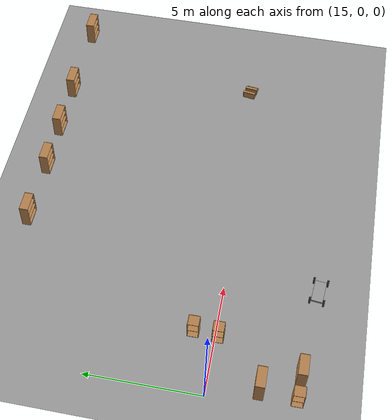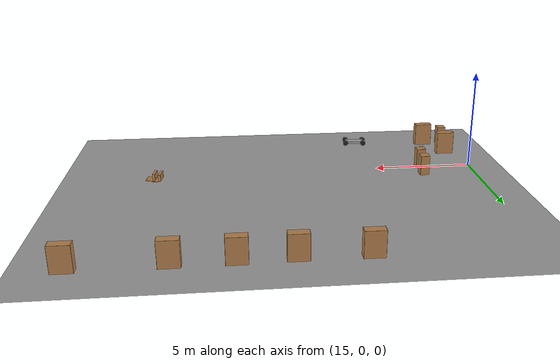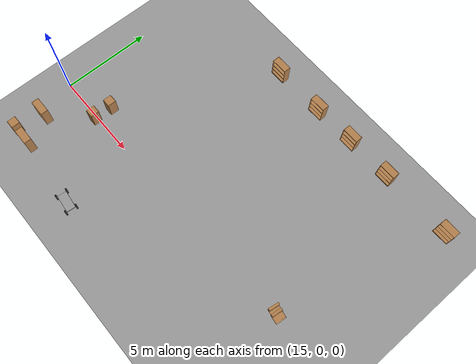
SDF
<sdf version="1.4">
 <world name="default">
  <light name="sun" type="directional">
   <pose>0 0 10 0 -0 0</pose>
   <diffuse>0.8 0.8 0.8 1</diffuse>
   <specular>0.2 0.2 0.2 1</specular>
   <attenuation>
    <range>1000</range>
    <constant>0.9</constant>
    <linear>0.01</linear>
    <quadratic>0.001</quadratic>
   </attenuation>
   <direction>0.5 0.1 -0.9</direction>
  </light>
  <scene><ambient>0.4 0.4 0.4 1</ambient><background>0.7 0.7 0.7 1</background><shadows>1</shadows></scene>
  <physics type="ode">
   <max_step_size>0.01</max_step_size>
   <real_time_factor>1</real_time_factor>
   <real_time_update_rate>100</real_time_update_rate>
   <gravity>0 0 -9.8</gravity>
  </physics>
  <model name="bookshelf">
   <static>1</static>
   <link name="link">
    <inertial><mass>1</mass></inertial>
    <collision name="back">
     <pose>0 0.005 0.6 0 -0 0</pose>
     <geometry><box><size>0.9 0.01 1.2</size></box></geometry>
    </collision>
    <visual name="visual1">
     <pose>0 0.005 0.6 0 -0 0</pose>
     <geometry><box><size>0.9 0.01 1.2</size></box></geometry>
     <material>
      <script><uri>file://media/materials/scripts/gazebo.material</uri><name>Gazebo/Wood</name></script>
     </material>
    </visual>
    <collision name="left_side">
     <pose>0.45 -0.195 0.6 0 -0 0</pose>
     <geometry><box><size>0.02 0.4 1.2</size></box></geometry>
    </collision>
    <visual name="visual2">
     <pose>0.45 -0.195 0.6 0 -0 0</pose>
     <geometry><box><size>0.02 0.4 1.2</size></box></geometry>
     <material>
      <script><uri>file://media/materials/scripts/gazebo.material</uri><name>Gazebo/Wood</name></script>
     </material>
    </visual>
    <collision name="right_side">
     <pose>-0.45 -0.195 0.6 0 -0 0</pose>
     <geometry><box><size>0.02 0.4 1.2</size></box></geometry>
    </collision>
    <visual name="visual3">
     <pose>-0.45 -0.195 0.6 0 -0 0</pose>
     <geometry><box><size>0.02 0.4 1.2</size></box></geometry>
     <material>
      <script><uri>file://media/materials/scripts/gazebo.material</uri><name>Gazebo/Wood</name></script>
     </material>
    </visual>
    <collision name="bottom">
     <pose>0 -0.195 0.03 0 -0 0</pose>
     <geometry><box><size>0.88 0.4 0.06</size></box></geometry>
    </collision>
    <visual name="visual4">
     <pose>0 -0.195 0.03 0 -0 0</pose>
     <geometry><box><size>0.88 0.4 0.06</size></box></geometry>
     <material>
      <script><uri>file://media/materials/scripts/gazebo.material</uri><name>Gazebo/Wood</name></script>
     </material>
    </visual>
    <collision name="top">
     <pose>0 -0.195 1.19 0 -0 0</pose>
     <geometry><box><size>0.88 0.4 0.02</size></box></geometry>
    </collision>
    <visual name="visual5">
     <pose>0 -0.195 1.19 0 -0 0</pose>
     <geometry><box><size>0.88 0.4 0.02</size></box></geometry>
     <material>
      <script><uri>file://media/materials/scripts/gazebo.material</uri><name>Gazebo/Wood</name></script>
     </material>
    </visual>
    <collision name="low_shelf">
     <pose>0 -0.195 0.43 0 -0 0</pose>
     <geometry><box><size>0.88 0.4 0.02</size></box></geometry>
    </collision>
    <visual name="visual6">
     <pose>0 -0.195 0.43 0 -0 0</pose>
     <geometry><box><size>0.88 0.4 0.02</size></box></geometry>
     <material>
      <script><uri>file://media/materials/scripts/gazebo.material</uri><name>Gazebo/Wood</name></script>
     </material>
    </visual>
    <collision name="high_shelf">
     <pose>0 -0.195 0.8 0 -0 0</pose>
     <geometry><box><size>0.88 0.4 0.02</size></box></geometry>
    </collision>
    <visual name="visual7">
     <pose>0 -0.195 0.8 0 -0 0</pose>
     <geometry><box><size>0.88 0.4 0.02</size></box></geometry>
     <material>
      <script><uri>file://media/materials/scripts/gazebo.material</uri><name>Gazebo/Wood</name></script>
     </material>
    </visual>
    <velocity_decay><linear>0</linear><angular>0</angular></velocity_decay>
   </link>
   <pose>15.7272 -1.91134 0 0 -0 0</pose>
  </model>
  <model name="ground_plane_0">
   <static>1</static>
   <link name="link">
    <collision name="collision">
     <geometry><plane><normal>0 0 1</normal><size>100 100</size></plane></geometry>
     <surface><friction><ode><mu>100</mu><mu2>50</mu2></ode></friction></surface>
    </collision>
    <visual name="visual">
     <cast_shadows>0</cast_shadows>
     <geometry><plane><normal>0 0 1</normal><size>100 100</size></plane></geometry>
     <material>
      <script><uri>file://media/materials/scripts/gazebo.material</uri><name>Gazebo/Grey</name></script>
     </material>
    </visual>
    <velocity_decay><linear>0</linear><angular>0</angular></velocity_decay>
   </link>
   <pose>0.497681 0 0 0 -0 0</pose>
  </model>
  <spherical_coordinates>
   <surface_model>EARTH_WGS84</surface_model>
   <latitude_deg>0</latitude_deg>
   <longitude_deg>0</longitude_deg>
   <elevation>0</elevation>
   <heading_deg>0</heading_deg>
  </spherical_coordinates>
  <model name="cabinet">
   <static>1</static>
   <link name="cabinet_bottom_plate">
    <inertial>
     <pose>0 0 -1 0 -0 0</pose>
     <inertia><ixx>2.05</ixx><ixy>0</ixy><ixz>0</ixz><iyy>2.05</iyy><iyz>0</iyz><izz>2.05</izz></inertia>
     <mass>25</mass>
    </inertial>
    <collision name="cabinet_bottom_plate_geom">
     <pose>0 0 0.01 0 -0 0</pose>
     <geometry><box><size>0.45 0.45 0.02</size></box></geometry>
    </collision>
    <visual name="cabinet_bottom_plate_geom_visual">
     <pose>0 0 0.01 0 -0 0</pose>
     <geometry><box><size>0.45 0.45 0.02</size></box></geometry>
     <material>
      <script><uri>file://media/materials/scripts/gazebo.material</uri><name>Gazebo/Wood</name></script>
     </material>
    </visual>
    <collision name="cabinet_bottom_plate_geom_cabinet_back_plate">
     <pose>0.235 0 0.51 0 -0 0</pose>
     <geometry><box><size>0.02 0.45 1.02</size></box></geometry>
    </collision>
    <visual name="cabinet_bottom_plate_geom_cabinet_back_plate_visual">
     <pose>0.235 0 0.51 0 -0 0</pose>
     <geometry><box><size>0.02 0.45 1.02</size></box></geometry>
     <material>
      <script><uri>file://media/materials/scripts/gazebo.material</uri><name>Gazebo/Wood</name></script>
     </material>
    </visual>
    <collision name="cabinet_bottom_plate_geom_cabinet_left_plate">
     <pose>0 0.235 0.51 0 -0 0</pose>
     <geometry><box><size>0.45 0.02 1.02</size></box></geometry>
    </collision>
    <visual name="cabinet_bottom_plate_geom_cabinet_left_plate_visual">
     <pose>0 0.235 0.51 0 -0 0</pose>
     <geometry><box><size>0.45 0.02 1.02</size></box></geometry>
     <material>
      <script><uri>file://media/materials/scripts/gazebo.material</uri><name>Gazebo/Wood</name></script>
     </material>
    </visual>
    <collision name="cabinet_bottom_plate_geom_cabinet_middle_plate">
     <pose>0 0 0.51 0 -0 0</pose>
     <geometry><box><size>0.45 0.45 0.02</size></box></geometry>
    </collision>
    <visual name="cabinet_bottom_plate_geom_cabinet_middle_plate_visual">
     <pose>0 0 0.51 0 -0 0</pose>
     <geometry><box><size>0.45 0.45 0.02</size></box></geometry>
     <material>
      <script><uri>file://media/materials/scripts/gazebo.material</uri><name>Gazebo/Wood</name></script>
     </material>
    </visual>
    <collision name="cabinet_bottom_plate_geom_cabinet_right_plate">
     <pose>0 -0.235 0.51 0 -0 0</pose>
     <geometry><box><size>0.45 0.02 1.02</size></box></geometry>
    </collision>
    <visual name="cabinet_bottom_plate_geom_cabinet_right_plate_visual">
     <pose>0 -0.235 0.51 0 -0 0</pose>
     <geometry><box><size>0.45 0.02 1.02</size></box></geometry>
     <material>
      <script><uri>file://media/materials/scripts/gazebo.material</uri><name>Gazebo/Wood</name></script>
     </material>
    </visual>
    <collision name="cabinet_bottom_plate_geom_cabinet_top_plate">
     <pose>0 0 1.01 0 -0 0</pose>
     <geometry><box><size>0.45 0.45 0.02</size></box></geometry>
    </collision>
    <visual name="cabinet_bottom_plate_geom_cabinet_top_plate_visual">
     <pose>0 0 1.01 0 -0 0</pose>
     <geometry><box><size>0.45 0.45 0.02</size></box></geometry>
     <material>
      <script><uri>file://media/materials/scripts/gazebo.material</uri><name>Gazebo/Wood</name></script>
     </material>
    </visual>
    <velocity_decay><linear>0</linear><angular>0</angular></velocity_decay>
   </link>
   <pose>15.496 -3.64928 0 0 -0 0</pose>
  </model>
  <model name="bookshelf_0">
   <static>1</static>
   <link name="link">
    <inertial><mass>1</mass></inertial>
    <collision name="back">
     <pose>0 0.005 0.6 0 -0 0</pose>
     <geometry><box><size>0.9 0.01 1.2</size></box></geometry>
    </collision>
    <visual name="visual1">
     <pose>0 0.005 0.6 0 -0 0</pose>
     <geometry><box><size>0.9 0.01 1.2</size></box></geometry>
     <material>
      <script><uri>file://media/materials/scripts/gazebo.material</uri><name>Gazebo/Wood</name></script>
     </material>
    </visual>
    <collision name="left_side">
     <pose>0.45 -0.195 0.6 0 -0 0</pose>
     <geometry><box><size>0.02 0.4 1.2</size></box></geometry>
    </collision>
    <visual name="visual2">
     <pose>0.45 -0.195 0.6 0 -0 0</pose>
     <geometry><box><size>0.02 0.4 1.2</size></box></geometry>
     <material>
      <script><uri>file://media/materials/scripts/gazebo.material</uri><name>Gazebo/Wood</name></script>
     </material>
    </visual>
    <collision name="right_side">
     <pose>-0.45 -0.195 0.6 0 -0 0</pose>
     <geometry><box><size>0.02 0.4 1.2</size></box></geometry>
    </collision>
    <visual name="visual3">
     <pose>-0.45 -0.195 0.6 0 -0 0</pose>
     <geometry><box><size>0.02 0.4 1.2</size></box></geometry>
     <material>
      <script><uri>file://media/materials/scripts/gazebo.material</uri><name>Gazebo/Wood</name></script>
     </material>
    </visual>
    <collision name="bottom">
     <pose>0 -0.195 0.03 0 -0 0</pose>
     <geometry><box><size>0.88 0.4 0.06</size></box></geometry>
    </collision>
    <visual name="visual4">
     <pose>0 -0.195 0.03 0 -0 0</pose>
     <geometry><box><size>0.88 0.4 0.06</size></box></geometry>
     <material>
      <script><uri>file://media/materials/scripts/gazebo.material</uri><name>Gazebo/Wood</name></script>
     </material>
    </visual>
    <collision name="top">
     <pose>0 -0.195 1.19 0 -0 0</pose>
     <geometry><box><size>0.88 0.4 0.02</size></box></geometry>
    </collision>
    <visual name="visual5">
     <pose>0 -0.195 1.19 0 -0 0</pose>
     <geometry><box><size>0.88 0.4 0.02</size></box></geometry>
     <material>
      <script><uri>file://media/materials/scripts/gazebo.material</uri><name>Gazebo/Wood</name></script>
     </material>
    </visual>
    <collision name="low_shelf">
     <pose>0 -0.195 0.43 0 -0 0</pose>
     <geometry><box><size>0.88 0.4 0.02</size></box></geometry>
    </collision>
    <visual name="visual6">
     <pose>0 -0.195 0.43 0 -0 0</pose>
     <geometry><box><size>0.88 0.4 0.02</size></box></geometry>
     <material>
      <script><uri>file://media/materials/scripts/gazebo.material</uri><name>Gazebo/Wood</name></script>
     </material>
    </visual>
    <collision name="high_shelf">
     <pose>0 -0.195 0.8 0 -0 0</pose>
     <geometry><box><size>0.88 0.4 0.02</size></box></geometry>
    </collision>
    <visual name="visual7">
     <pose>0 -0.195 0.8 0 -0 0</pose>
     <geometry><box><size>0.88 0.4 0.02</size></box></geometry>
     <material>
      <script><uri>file://media/materials/scripts/gazebo.material</uri><name>Gazebo/Wood</name></script>
     </material>
    </visual>
    <velocity_decay><linear>0</linear><angular>0</angular></velocity_decay>
   </link>
   <pose>16.5579 -3.48331 0 0 -0 0</pose>
  </model>
  <model name="cart_rigid_suspension">
   <link name="chassis">
    <pose>0 0 0.15 0 -0 0</pose>
    <inertial>
     <pose>0.1 0 0 0 -0 0</pose>
     <mass>10</mass>
     <inertia>
      <ixx>0.216667</ixx>
      <iyy>0.841667</iyy>
      <izz>1.04167</izz>
      <ixy>0</ixy>
      <ixz>0</ixz>
      <iyz>0</iyz>
     </inertia>
    </inertial>
    <collision name="collision"><geometry><box><size>1 0.5 0.1</size></box></geometry></collision>
    <visual name="visual">
     <geometry><box><size>1 0.5 0.1</size></box></geometry>
     <material>
      <script><uri>file://media/materials/scripts/gazebo.material</uri><name>Gazebo/Grey</name></script>
     </material>
    </visual>
    <velocity_decay><linear>0</linear><angular>0</angular></velocity_decay>
   </link>
   <link name="wheel_front_left">
    <pose>0.5 0.298 0.15 -1.5708 0 0</pose>
    <inertial>
     <mass>0.5</mass>
     <inertia>
      <ixx>0.00307917</ixx>
      <iyy>0.00307917</iyy>
      <izz>0.005625</izz>
      <ixy>0</ixy>
      <ixz>0</ixz>
      <iyz>0</iyz>
     </inertia>
    </inertial>
    <collision name="collision">
     <geometry><cylinder><radius>0.15</radius><length>0.08</length></cylinder></geometry>
    </collision>
    <visual name="visual">
     <geometry><cylinder><radius>0.15</radius><length>0.08</length></cylinder></geometry>
     <material>
      <script><uri>file://media/materials/scripts/gazebo.material</uri><name>Gazebo/Black</name></script>
     </material>
    </visual>
    <velocity_decay><linear>0</linear><angular>0</angular></velocity_decay>
   </link>
   <joint name="wheel_front_left_spin" type="revolute">
    <parent>chassis</parent>
    <child>wheel_front_left</child>
    <axis><xyz>0 0 1</xyz><limit><lower>-1e+16</lower><upper>1e+16</upper></limit></axis>
   </joint>
   <link name="wheel_front_right">
    <pose>0.5 -0.298 0.15 -1.5708 0 0</pose>
    <inertial>
     <mass>0.5</mass>
     <inertia>
      <ixx>0.00307917</ixx>
      <iyy>0.00307917</iyy>
      <izz>0.005625</izz>
      <ixy>0</ixy>
      <ixz>0</ixz>
      <iyz>0</iyz>
     </inertia>
    </inertial>
    <collision name="collision">
     <geometry><cylinder><radius>0.15</radius><length>0.08</length></cylinder></geometry>
    </collision>
    <visual name="visual">
     <geometry><cylinder><radius>0.15</radius><length>0.08</length></cylinder></geometry>
     <material>
      <script><uri>file://media/materials/scripts/gazebo.material</uri><name>Gazebo/Black</name></script>
     </material>
    </visual>
    <velocity_decay><linear>0</linear><angular>0</angular></velocity_decay>
   </link>
   <joint name="wheel_front_right_spin" type="revolute">
    <parent>chassis</parent>
    <child>wheel_front_right</child>
    <axis><xyz>0 0 1</xyz><limit><lower>-1e+16</lower><upper>1e+16</upper></limit></axis>
   </joint>
   <link name="wheel_rear_left">
    <pose>-0.5 0.298 0.15 -1.5708 0 0</pose>
    <inertial>
     <mass>0.5</mass>
     <inertia>
      <ixx>0.00307917</ixx>
      <iyy>0.00307917</iyy>
      <izz>0.005625</izz>
      <ixy>0</ixy>
      <ixz>0</ixz>
      <iyz>0</iyz>
     </inertia>
    </inertial>
    <collision name="collision">
     <geometry><cylinder><radius>0.15</radius><length>0.08</length></cylinder></geometry>
    </collision>
    <visual name="visual">
     <geometry><cylinder><radius>0.15</radius><length>0.08</length></cylinder></geometry>
     <material>
      <script><uri>file://media/materials/scripts/gazebo.material</uri><name>Gazebo/Black</name></script>
     </material>
    </visual>
    <velocity_decay><linear>0</linear><angular>0</angular></velocity_decay>
   </link>
   <joint name="wheel_rear_left_spin" type="revolute">
    <parent>chassis</parent>
    <child>wheel_rear_left</child>
    <axis><xyz>0 0 1</xyz><limit><lower>-1e+16</lower><upper>1e+16</upper></limit></axis>
   </joint>
   <link name="wheel_rear_right">
    <pose>-0.5 -0.298 0.15 -1.5708 0 0</pose>
    <inertial>
     <mass>0.5</mass>
     <inertia>
      <ixx>0.00307917</ixx>
      <iyy>0.00307917</iyy>
      <izz>0.005625</izz>
      <ixy>0</ixy>
      <ixz>0</ixz>
      <iyz>0</iyz>
     </inertia>
    </inertial>
    <collision name="collision">
     <geometry><cylinder><radius>0.15</radius><length>0.08</length></cylinder></geometry>
    </collision>
    <visual name="visual">
     <geometry><cylinder><radius>0.15</radius><length>0.08</length></cylinder></geometry>
     <material>
      <script><uri>file://media/materials/scripts/gazebo.material</uri><name>Gazebo/Black</name></script>
     </material>
    </visual>
    <velocity_decay><linear>0</linear><angular>0</angular></velocity_decay>
   </link>
   <joint name="wheel_rear_right_spin" type="revolute">
    <parent>chassis</parent>
    <child>wheel_rear_right</child>
    <axis><xyz>0 0 1</xyz><limit><lower>-1e+16</lower><upper>1e+16</upper></limit></axis>
   </joint>
   <pose>20.5338 -4.00375 4.2e-05 -3.4e-05 -7e-05 -0.097938</pose>
   <static>0</static>
  </model>
  <model name="cabinet_0">
   <static>1</static>
   <link name="cabinet_bottom_plate">
    <inertial>
     <pose>0 0 -1 0 -0 0</pose>
     <inertia><ixx>2.05</ixx><ixy>0</ixy><ixz>0</ixz><iyy>2.05</iyy><iyz>0</iyz><izz>2.05</izz></inertia>
     <mass>25</mass>
    </inertial>
    <collision name="cabinet_bottom_plate_geom">
     <pose>0 0 0.01 0 -0 0</pose>
     <geometry><box><size>0.45 0.45 0.02</size></box></geometry>
    </collision>
    <visual name="cabinet_bottom_plate_geom_visual">
     <pose>0 0 0.01 0 -0 0</pose>
     <geometry><box><size>0.45 0.45 0.02</size></box></geometry>
     <material>
      <script><uri>file://media/materials/scripts/gazebo.material</uri><name>Gazebo/Wood</name></script>
     </material>
    </visual>
    <collision name="cabinet_bottom_plate_geom_cabinet_back_plate">
     <pose>0.235 0 0.51 0 -0 0</pose>
     <geometry><box><size>0.02 0.45 1.02</size></box></geometry>
    </collision>
    <visual name="cabinet_bottom_plate_geom_cabinet_back_plate_visual">
     <pose>0.235 0 0.51 0 -0 0</pose>
     <geometry><box><size>0.02 0.45 1.02</size></box></geometry>
     <material>
      <script><uri>file://media/materials/scripts/gazebo.material</uri><name>Gazebo/Wood</name></script>
     </material>
    </visual>
    <collision name="cabinet_bottom_plate_geom_cabinet_left_plate">
     <pose>0 0.235 0.51 0 -0 0</pose>
     <geometry><box><size>0.45 0.02 1.02</size></box></geometry>
    </collision>
    <visual name="cabinet_bottom_plate_geom_cabinet_left_plate_visual">
     <pose>0 0.235 0.51 0 -0 0</pose>
     <geometry><box><size>0.45 0.02 1.02</size></box></geometry>
     <material>
      <script><uri>file://media/materials/scripts/gazebo.material</uri><name>Gazebo/Wood</name></script>
     </material>
    </visual>
    <collision name="cabinet_bottom_plate_geom_cabinet_middle_plate">
     <pose>0 0 0.51 0 -0 0</pose>
     <geometry><box><size>0.45 0.45 0.02</size></box></geometry>
    </collision>
    <visual name="cabinet_bottom_plate_geom_cabinet_middle_plate_visual">
     <pose>0 0 0.51 0 -0 0</pose>
     <geometry><box><size>0.45 0.45 0.02</size></box></geometry>
     <material>
      <script><uri>file://media/materials/scripts/gazebo.material</uri><name>Gazebo/Wood</name></script>
     </material>
    </visual>
    <collision name="cabinet_bottom_plate_geom_cabinet_right_plate">
     <pose>0 -0.235 0.51 0 -0 0</pose>
     <geometry><box><size>0.45 0.02 1.02</size></box></geometry>
    </collision>
    <visual name="cabinet_bottom_plate_geom_cabinet_right_plate_visual">
     <pose>0 -0.235 0.51 0 -0 0</pose>
     <geometry><box><size>0.45 0.02 1.02</size></box></geometry>
     <material>
      <script><uri>file://media/materials/scripts/gazebo.material</uri><name>Gazebo/Wood</name></script>
     </material>
    </visual>
    <collision name="cabinet_bottom_plate_geom_cabinet_top_plate">
     <pose>0 0 1.01 0 -0 0</pose>
     <geometry><box><size>0.45 0.45 0.02</size></box></geometry>
    </collision>
    <visual name="cabinet_bottom_plate_geom_cabinet_top_plate_visual">
     <pose>0 0 1.01 0 -0 0</pose>
     <geometry><box><size>0.45 0.45 0.02</size></box></geometry>
     <material>
      <script><uri>file://media/materials/scripts/gazebo.material</uri><name>Gazebo/Wood</name></script>
     </material>
    </visual>
    <velocity_decay><linear>0</linear><angular>0</angular></velocity_decay>
   </link>
   <pose>17.6375 -0.129343 0 0 -0 0</pose>
  </model>
  <model name="cabinet_1">
   <static>1</static>
   <link name="cabinet_bottom_plate">
    <inertial>
     <pose>0 0 -1 0 -0 0</pose>
     <inertia><ixx>2.05</ixx><ixy>0</ixy><ixz>0</ixz><iyy>2.05</iyy><iyz>0</iyz><izz>2.05</izz></inertia>
     <mass>25</mass>
    </inertial>
    <collision name="cabinet_bottom_plate_geom">
     <pose>0 0 0.01 0 -0 0</pose>
     <geometry><box><size>0.45 0.45 0.02</size></box></geometry>
    </collision>
    <visual name="cabinet_bottom_plate_geom_visual">
     <pose>0 0 0.01 0 -0 0</pose>
     <geometry><box><size>0.45 0.45 0.02</size></box></geometry>
     <material>
      <script><uri>file://media/materials/scripts/gazebo.material</uri><name>Gazebo/Wood</name></script>
     </material>
    </visual>
    <collision name="cabinet_bottom_plate_geom_cabinet_back_plate">
     <pose>0.235 0 0.51 0 -0 0</pose>
     <geometry><box><size>0.02 0.45 1.02</size></box></geometry>
    </collision>
    <visual name="cabinet_bottom_plate_geom_cabinet_back_plate_visual">
     <pose>0.235 0 0.51 0 -0 0</pose>
     <geometry><box><size>0.02 0.45 1.02</size></box></geometry>
     <material>
      <script><uri>file://media/materials/scripts/gazebo.material</uri><name>Gazebo/Wood</name></script>
     </material>
    </visual>
    <collision name="cabinet_bottom_plate_geom_cabinet_left_plate">
     <pose>0 0.235 0.51 0 -0 0</pose>
     <geometry><box><size>0.45 0.02 1.02</size></box></geometry>
    </collision>
    <visual name="cabinet_bottom_plate_geom_cabinet_left_plate_visual">
     <pose>0 0.235 0.51 0 -0 0</pose>
     <geometry><box><size>0.45 0.02 1.02</size></box></geometry>
     <material>
      <script><uri>file://media/materials/scripts/gazebo.material</uri><name>Gazebo/Wood</name></script>
     </material>
    </visual>
    <collision name="cabinet_bottom_plate_geom_cabinet_middle_plate">
     <pose>0 0 0.51 0 -0 0</pose>
     <geometry><box><size>0.45 0.45 0.02</size></box></geometry>
    </collision>
    <visual name="cabinet_bottom_plate_geom_cabinet_middle_plate_visual">
     <pose>0 0 0.51 0 -0 0</pose>
     <geometry><box><size>0.45 0.45 0.02</size></box></geometry>
     <material>
      <script><uri>file://media/materials/scripts/gazebo.material</uri><name>Gazebo/Wood</name></script>
     </material>
    </visual>
    <collision name="cabinet_bottom_plate_geom_cabinet_right_plate">
     <pose>0 -0.235 0.51 0 -0 0</pose>
     <geometry><box><size>0.45 0.02 1.02</size></box></geometry>
    </collision>
    <visual name="cabinet_bottom_plate_geom_cabinet_right_plate_visual">
     <pose>0 -0.235 0.51 0 -0 0</pose>
     <geometry><box><size>0.45 0.02 1.02</size></box></geometry>
     <material>
      <script><uri>file://media/materials/scripts/gazebo.material</uri><name>Gazebo/Wood</name></script>
     </material>
    </visual>
    <collision name="cabinet_bottom_plate_geom_cabinet_top_plate">
     <pose>0 0 1.01 0 -0 0</pose>
     <geometry><box><size>0.45 0.45 0.02</size></box></geometry>
    </collision>
    <visual name="cabinet_bottom_plate_geom_cabinet_top_plate_visual">
     <pose>0 0 1.01 0 -0 0</pose>
     <geometry><box><size>0.45 0.45 0.02</size></box></geometry>
     <material>
      <script><uri>file://media/materials/scripts/gazebo.material</uri><name>Gazebo/Wood</name></script>
     </material>
    </visual>
    <velocity_decay><linear>0</linear><angular>0</angular></velocity_decay>
   </link>
   <pose>17.6979 0.915776 0 0 -0 0</pose>
  </model>
  <model name="wooden_case_metal_peg">
   <link name="wooden_case::base">
    <pose>0 0 0.024 0 -0 0</pose>
    <inertial>
     <pose>-0.0221845 0 0.171592 0 -0 0</pose>
     <mass>3.96264</mass>
     <inertia>
      <ixx>0.213536</ixx>
      <ixy>0</ixy>
      <ixz>0.000779377</ixz>
      <iyy>0.0708943</iyy>
      <iyz>0</iyz>
      <izz>0.154604</izz>
     </inertia>
    </inertial>
    <collision name="collision_back">
     <pose>-0.053975 0 0.1778 0 -0 0</pose>
     <geometry><box><size>0.01905 0.5461 0.3175</size></box></geometry>
     <surface><contact><ode><max_vel>0.1</max_vel><min_depth>0.001</min_depth></ode></contact></surface>
    </collision>
    <visual name="visual_back">
     <pose>-0.053975 0 0.1778 0 -0 0</pose>
     <geometry><box><size>0.01905 0.5461 0.3175</size></box></geometry>
     <material>
      <script><uri>file://media/materials/scripts/gazebo.material</uri><name>Gazebo/Wood</name></script>
     </material>
    </visual>
    <collision name="collision_bottom">
     <pose>0 0 0.009525 0 -0 0</pose>
     <geometry><box><size>0.127 0.5842 0.01905</size></box></geometry>
     <surface><contact><ode><max_vel>0.1</max_vel><min_depth>0.001</min_depth></ode></contact></surface>
    </collision>
    <visual name="visual_bottom">
     <pose>0 0 0.009525 0 -0 0</pose>
     <geometry><box><size>0.127 0.5842 0.01905</size></box></geometry>
     <material>
      <script><uri>file://media/materials/scripts/gazebo.material</uri><name>Gazebo/Wood</name></script>
     </material>
    </visual>
    <collision name="collision_top">
     <pose>0 0 0.346075 0 -0 0</pose>
     <geometry><box><size>0.127 0.5842 0.01905</size></box></geometry>
     <surface><contact><ode><max_vel>0.1</max_vel><min_depth>0.001</min_depth></ode></contact></surface>
    </collision>
    <visual name="visual_top">
     <pose>0 0 0.346075 0 -0 0</pose>
     <geometry><box><size>0.127 0.5842 0.01905</size></box></geometry>
     <material>
      <script><uri>file://media/materials/scripts/gazebo.material</uri><name>Gazebo/Wood</name></script>
     </material>
    </visual>
    <collision name="collision_left">
     <pose>0 -0.282575 0.1778 0 -0 0</pose>
     <geometry><box><size>0.127 0.01905 0.3175</size></box></geometry>
     <surface><contact><ode><max_vel>0.1</max_vel><min_depth>0.001</min_depth></ode></contact></surface>
    </collision>
    <visual name="visual_left">
     <pose>0 -0.282575 0.1778 0 -0 0</pose>
     <geometry><box><size>0.127 0.01905 0.3175</size></box></geometry>
     <material>
      <script><uri>file://media/materials/scripts/gazebo.material</uri><name>Gazebo/Wood</name></script>
     </material>
    </visual>
    <collision name="collision_right">
     <pose>0 0.282575 0.1778 0 -0 0</pose>
     <geometry><box><size>0.127 0.01905 0.3175</size></box></geometry>
     <surface><contact><ode><max_vel>0.1</max_vel><min_depth>0.001</min_depth></ode></contact></surface>
    </collision>
    <visual name="visual_right">
     <pose>0 0.282575 0.1778 0 -0 0</pose>
     <geometry><box><size>0.127 0.01905 0.3175</size></box></geometry>
     <material>
      <script><uri>file://media/materials/scripts/gazebo.material</uri><name>Gazebo/Wood</name></script>
     </material>
    </visual>
    <collision name="collision_block_left">
     <pose>0.0095 -0.2151 -0.012 0 -0 0</pose>
     <geometry><box><size>0.108 0.05 0.024</size></box></geometry>
     <surface><contact><ode><max_vel>0.1</max_vel><min_depth>0.001</min_depth></ode></contact></surface>
    </collision>
    <visual name="visual_block_left">
     <pose>0.0095 -0.2151 -0.012 0 -0 0</pose>
     <geometry><box><size>0.108 0.05 0.024</size></box></geometry>
     <material>
      <script><uri>file://media/materials/scripts/gazebo.material</uri><name>Gazebo/Wood</name></script>
     </material>
    </visual>
    <collision name="collision_block_right">
     <pose>0.0095 0.2151 -0.012 0 -0 0</pose>
     <geometry><box><size>0.108 0.05 0.024</size></box></geometry>
     <surface><contact><ode><max_vel>0.1</max_vel><min_depth>0.001</min_depth></ode></contact></surface>
    </collision>
    <visual name="visual_block_right">
     <pose>0.0095 0.2151 -0.012 0 -0 0</pose>
     <geometry><box><size>0.108 0.05 0.024</size></box></geometry>
     <material>
      <script><uri>file://media/materials/scripts/gazebo.material</uri><name>Gazebo/Wood</name></script>
     </material>
    </visual>
    <velocity_decay><linear>0</linear><angular>0</angular></velocity_decay>
   </link>
   <link name="wooden_case::lid">
    <pose>0.243775 0 0.009525 0 -0 0</pose>
    <inertial>
     <mass>1.97874</mass>
     <inertia>
      <ixx>0.0563367</ixx>
      <ixy>0</ixy>
      <ixz>0</ixz>
      <iyy>0.020911</iyy>
      <iyz>0</iyz>
      <izz>0.0771281</izz>
     </inertia>
    </inertial>
    <collision name="collision">
     <geometry><box><size>0.3556 0.5842 0.01905</size></box></geometry>
     <surface><contact><ode><max_vel>0.1</max_vel><min_depth>0.001</min_depth></ode></contact></surface>
    </collision>
    <visual name="visual">
     <geometry><box><size>0.3556 0.5842 0.01905</size></box></geometry>
     <material>
      <script><uri>file://media/materials/scripts/gazebo.material</uri><name>Gazebo/Wood</name></script>
     </material>
    </visual>
    <visual name="tee_nut_1">
     <pose>0.122 -0.216 0 0 -0 0</pose>
     <geometry><cylinder><radius>0.00635</radius><length>0.0192405</length></cylinder></geometry>
     <material>
      <script><uri>file://media/materials/scripts/gazebo.material</uri><name>Gazebo/Grey</name></script>
     </material>
    </visual>
    <visual name="tee_nut_2">
     <pose>0.122 -0.088 0 0 -0 0</pose>
     <geometry><cylinder><radius>0.00635</radius><length>0.0192405</length></cylinder></geometry>
     <material>
      <script><uri>file://media/materials/scripts/gazebo.material</uri><name>Gazebo/Grey</name></script>
     </material>
    </visual>
    <visual name="tee_nut_3">
     <pose>0.122 0.088 0 0 -0 0</pose>
     <geometry><cylinder><radius>0.00635</radius><length>0.0192405</length></cylinder></geometry>
     <material>
      <script><uri>file://media/materials/scripts/gazebo.material</uri><name>Gazebo/Grey</name></script>
     </material>
    </visual>
    <visual name="tee_nut_4">
     <pose>0.122 0.216 0 0 -0 0</pose>
     <geometry><cylinder><radius>0.00635</radius><length>0.0192405</length></cylinder></geometry>
     <material>
      <script><uri>file://media/materials/scripts/gazebo.material</uri><name>Gazebo/Grey</name></script>
     </material>
    </visual>
    <velocity_decay><linear>0</linear><angular>0</angular></velocity_decay>
   </link>
   <joint name="wooden_case::lid_hinge" type="revolute">
    <pose>-0.1778 0 0.01905 0 -0 0</pose>
    <parent>wooden_case::base</parent>
    <child>wooden_case::lid</child>
    <axis><xyz>0 1 0</xyz><limit><upper>0.523599</upper><lower>-1.5708</lower></limit></axis>
   </joint>
   <link name="peg::link">
    <pose>0.365774 0.216 0.05005 0 -0 0</pose>
    <inertial>
     <mass>0.0121</mass>
     <inertia>
      <ixx>3.90898e-06</ixx>
      <ixy>0</ixy>
      <ixz>0</ixz>
      <iyy>3.90898e-06</iyy>
      <iyz>0</iyz>
      <izz>6.58845e-08</izz>
     </inertia>
    </inertial>
    <collision name="collision">
     <geometry><cylinder><radius>0.0033</radius><length>0.062</length></cylinder></geometry>
    </collision>
    <visual name="visual">
     <geometry><cylinder><radius>0.0033</radius><length>0.062</length></cylinder></geometry>
     <material>
      <script><uri>file://media/materials/scripts/gazebo.material</uri><name>Gazebo/Grey</name></script>
     </material>
    </visual>
    <velocity_decay><linear>0</linear><angular>0</angular></velocity_decay>
   </link>
   <joint name="case_peg" type="revolute">
    <child>peg::link</child>
    <parent>wooden_case::lid</parent>
    <axis><xyz>0 0 1</xyz><limit><upper>0</upper><lower>0</lower></limit></axis>
   </joint>
   <pose>31.2284 0.526777 -0.000367 0.000436 -0.003364 -0.149903</pose>
   <static>0</static>
  </model>
  <model name="wooden_case_wooden_peg">
   <link name="wooden_case::base">
    <pose>0 0 0.024 0 -0 0</pose>
    <inertial>
     <pose>-0.0221845 0 0.171592 0 -0 0</pose>
     <mass>3.96264</mass>
     <inertia>
      <ixx>0.213536</ixx>
      <ixy>0</ixy>
      <ixz>0.000779377</ixz>
      <iyy>0.0708943</iyy>
      <iyz>0</iyz>
      <izz>0.154604</izz>
     </inertia>
    </inertial>
    <collision name="collision_back">
     <pose>-0.053975 0 0.1778 0 -0 0</pose>
     <geometry><box><size>0.01905 0.5461 0.3175</size></box></geometry>
     <surface><contact><ode><max_vel>0.1</max_vel><min_depth>0.001</min_depth></ode></contact></surface>
    </collision>
    <visual name="visual_back">
     <pose>-0.053975 0 0.1778 0 -0 0</pose>
     <geometry><box><size>0.01905 0.5461 0.3175</size></box></geometry>
     <material>
      <script><uri>file://media/materials/scripts/gazebo.material</uri><name>Gazebo/Wood</name></script>
     </material>
    </visual>
    <collision name="collision_bottom">
     <pose>0 0 0.009525 0 -0 0</pose>
     <geometry><box><size>0.127 0.5842 0.01905</size></box></geometry>
     <surface><contact><ode><max_vel>0.1</max_vel><min_depth>0.001</min_depth></ode></contact></surface>
    </collision>
    <visual name="visual_bottom">
     <pose>0 0 0.009525 0 -0 0</pose>
     <geometry><box><size>0.127 0.5842 0.01905</size></box></geometry>
     <material>
      <script><uri>file://media/materials/scripts/gazebo.material</uri><name>Gazebo/Wood</name></script>
     </material>
    </visual>
    <collision name="collision_top">
     <pose>0 0 0.346075 0 -0 0</pose>
     <geometry><box><size>0.127 0.5842 0.01905</size></box></geometry>
     <surface><contact><ode><max_vel>0.1</max_vel><min_depth>0.001</min_depth></ode></contact></surface>
    </collision>
    <visual name="visual_top">
     <pose>0 0 0.346075 0 -0 0</pose>
     <geometry><box><size>0.127 0.5842 0.01905</size></box></geometry>
     <material>
      <script><uri>file://media/materials/scripts/gazebo.material</uri><name>Gazebo/Wood</name></script>
     </material>
    </visual>
    <collision name="collision_left">
     <pose>0 -0.282575 0.1778 0 -0 0</pose>
     <geometry><box><size>0.127 0.01905 0.3175</size></box></geometry>
     <surface><contact><ode><max_vel>0.1</max_vel><min_depth>0.001</min_depth></ode></contact></surface>
    </collision>
    <visual name="visual_left">
     <pose>0 -0.282575 0.1778 0 -0 0</pose>
     <geometry><box><size>0.127 0.01905 0.3175</size></box></geometry>
     <material>
      <script><uri>file://media/materials/scripts/gazebo.material</uri><name>Gazebo/Wood</name></script>
     </material>
    </visual>
    <collision name="collision_right">
     <pose>0 0.282575 0.1778 0 -0 0</pose>
     <geometry><box><size>0.127 0.01905 0.3175</size></box></geometry>
     <surface><contact><ode><max_vel>0.1</max_vel><min_depth>0.001</min_depth></ode></contact></surface>
    </collision>
    <visual name="visual_right">
     <pose>0 0.282575 0.1778 0 -0 0</pose>
     <geometry><box><size>0.127 0.01905 0.3175</size></box></geometry>
     <material>
      <script><uri>file://media/materials/scripts/gazebo.material</uri><name>Gazebo/Wood</name></script>
     </material>
    </visual>
    <collision name="collision_block_left">
     <pose>0.0095 -0.2151 -0.012 0 -0 0</pose>
     <geometry><box><size>0.108 0.05 0.024</size></box></geometry>
     <surface><contact><ode><max_vel>0.1</max_vel><min_depth>0.001</min_depth></ode></contact></surface>
    </collision>
    <visual name="visual_block_left">
     <pose>0.0095 -0.2151 -0.012 0 -0 0</pose>
     <geometry><box><size>0.108 0.05 0.024</size></box></geometry>
     <material>
      <script><uri>file://media/materials/scripts/gazebo.material</uri><name>Gazebo/Wood</name></script>
     </material>
    </visual>
    <collision name="collision_block_right">
     <pose>0.0095 0.2151 -0.012 0 -0 0</pose>
     <geometry><box><size>0.108 0.05 0.024</size></box></geometry>
     <surface><contact><ode><max_vel>0.1</max_vel><min_depth>0.001</min_depth></ode></contact></surface>
    </collision>
    <visual name="visual_block_right">
     <pose>0.0095 0.2151 -0.012 0 -0 0</pose>
     <geometry><box><size>0.108 0.05 0.024</size></box></geometry>
     <material>
      <script><uri>file://media/materials/scripts/gazebo.material</uri><name>Gazebo/Wood</name></script>
     </material>
    </visual>
    <velocity_decay><linear>0</linear><angular>0</angular></velocity_decay>
   </link>
   <link name="wooden_case::lid">
    <pose>0.243775 0 0.009525 0 -0 0</pose>
    <inertial>
     <mass>1.97874</mass>
     <inertia>
      <ixx>0.0563367</ixx>
      <ixy>0</ixy>
      <ixz>0</ixz>
      <iyy>0.020911</iyy>
      <iyz>0</iyz>
      <izz>0.0771281</izz>
     </inertia>
    </inertial>
    <collision name="collision">
     <geometry><box><size>0.3556 0.5842 0.01905</size></box></geometry>
     <surface><contact><ode><max_vel>0.1</max_vel><min_depth>0.001</min_depth></ode></contact></surface>
    </collision>
    <visual name="visual">
     <geometry><box><size>0.3556 0.5842 0.01905</size></box></geometry>
     <material>
      <script><uri>file://media/materials/scripts/gazebo.material</uri><name>Gazebo/Wood</name></script>
     </material>
    </visual>
    <visual name="tee_nut_1">
     <pose>0.122 -0.216 0 0 -0 0</pose>
     <geometry><cylinder><radius>0.00635</radius><length>0.0192405</length></cylinder></geometry>
     <material>
      <script><uri>file://media/materials/scripts/gazebo.material</uri><name>Gazebo/Grey</name></script>
     </material>
    </visual>
    <visual name="tee_nut_2">
     <pose>0.122 -0.088 0 0 -0 0</pose>
     <geometry><cylinder><radius>0.00635</radius><length>0.0192405</length></cylinder></geometry>
     <material>
      <script><uri>file://media/materials/scripts/gazebo.material</uri><name>Gazebo/Grey</name></script>
     </material>
    </visual>
    <visual name="tee_nut_3">
     <pose>0.122 0.088 0 0 -0 0</pose>
     <geometry><cylinder><radius>0.00635</radius><length>0.0192405</length></cylinder></geometry>
     <material>
      <script><uri>file://media/materials/scripts/gazebo.material</uri><name>Gazebo/Grey</name></script>
     </material>
    </visual>
    <visual name="tee_nut_4">
     <pose>0.122 0.216 0 0 -0 0</pose>
     <geometry><cylinder><radius>0.00635</radius><length>0.0192405</length></cylinder></geometry>
     <material>
      <script><uri>file://media/materials/scripts/gazebo.material</uri><name>Gazebo/Grey</name></script>
     </material>
    </visual>
    <velocity_decay><linear>0</linear><angular>0</angular></velocity_decay>
   </link>
   <joint name="wooden_case::lid_hinge" type="revolute">
    <pose>-0.1778 0 0.01905 0 -0 0</pose>
    <parent>wooden_case::base</parent>
    <child>wooden_case::lid</child>
    <axis><xyz>0 1 0</xyz><limit><upper>0.523599</upper><lower>-1.5708</lower></limit></axis>
   </joint>
   <link name="peg::link">
    <pose>0.365774 0.216 0.05905 0 -0 0</pose>
    <inertial>
     <mass>0.0175</mass>
     <inertia>
      <ixx>9.74923e-06</ixx>
      <ixy>0</ixy>
      <ixz>0</ixz>
      <iyy>9.74923e-06</iyy>
      <iyz>0</iyz>
      <izz>8.31797e-07</izz>
     </inertia>
    </inertial>
    <collision name="collision">
     <geometry><cylinder><radius>0.00975</radius><length>0.08</length></cylinder></geometry>
    </collision>
    <visual name="visual">
     <geometry><cylinder><radius>0.00975</radius><length>0.08</length></cylinder></geometry>
     <material>
      <script><uri>file://media/materials/scripts/gazebo.material</uri><name>Gazebo/Wood</name></script>
     </material>
    </visual>
    <velocity_decay><linear>0</linear><angular>0</angular></velocity_decay>
   </link>
   <joint name="case_peg" type="revolute">
    <child>peg::link</child>
    <parent>wooden_case::lid</parent>
    <axis><xyz>0 0 1</xyz><limit><upper>0</upper><lower>0</lower></limit></axis>
   </joint>
   <pose>31.5246 0.450804 0.01904 -0.000944 -0.025334 -0.120949</pose>
   <static>0</static>
  </model>
  <model name="bookshelf_1">
   <static>1</static>
   <link name="link">
    <inertial><mass>1</mass></inertial>
    <collision name="back">
     <pose>0 0.005 0.6 0 -0 0</pose>
     <geometry><box><size>0.9 0.01 1.2</size></box></geometry>
    </collision>
    <visual name="visual1">
     <pose>0 0.005 0.6 0 -0 0</pose>
     <geometry><box><size>0.9 0.01 1.2</size></box></geometry>
     <material>
      <script><uri>file://media/materials/scripts/gazebo.material</uri><name>Gazebo/Wood</name></script>
     </material>
    </visual>
    <collision name="left_side">
     <pose>0.45 -0.195 0.6 0 -0 0</pose>
     <geometry><box><size>0.02 0.4 1.2</size></box></geometry>
    </collision>
    <visual name="visual2">
     <pose>0.45 -0.195 0.6 0 -0 0</pose>
     <geometry><box><size>0.02 0.4 1.2</size></box></geometry>
     <material>
      <script><uri>file://media/materials/scripts/gazebo.material</uri><name>Gazebo/Wood</name></script>
     </material>
    </visual>
    <collision name="right_side">
     <pose>-0.45 -0.195 0.6 0 -0 0</pose>
     <geometry><box><size>0.02 0.4 1.2</size></box></geometry>
    </collision>
    <visual name="visual3">
     <pose>-0.45 -0.195 0.6 0 -0 0</pose>
     <geometry><box><size>0.02 0.4 1.2</size></box></geometry>
     <material>
      <script><uri>file://media/materials/scripts/gazebo.material</uri><name>Gazebo/Wood</name></script>
     </material>
    </visual>
    <collision name="bottom">
     <pose>0 -0.195 0.03 0 -0 0</pose>
     <geometry><box><size>0.88 0.4 0.06</size></box></geometry>
    </collision>
    <visual name="visual4">
     <pose>0 -0.195 0.03 0 -0 0</pose>
     <geometry><box><size>0.88 0.4 0.06</size></box></geometry>
     <material>
      <script><uri>file://media/materials/scripts/gazebo.material</uri><name>Gazebo/Wood</name></script>
     </material>
    </visual>
    <collision name="top">
     <pose>0 -0.195 1.19 0 -0 0</pose>
     <geometry><box><size>0.88 0.4 0.02</size></box></geometry>
    </collision>
    <visual name="visual5">
     <pose>0 -0.195 1.19 0 -0 0</pose>
     <geometry><box><size>0.88 0.4 0.02</size></box></geometry>
     <material>
      <script><uri>file://media/materials/scripts/gazebo.material</uri><name>Gazebo/Wood</name></script>
     </material>
    </visual>
    <collision name="low_shelf">
     <pose>0 -0.195 0.43 0 -0 0</pose>
     <geometry><box><size>0.88 0.4 0.02</size></box></geometry>
    </collision>
    <visual name="visual6">
     <pose>0 -0.195 0.43 0 -0 0</pose>
     <geometry><box><size>0.88 0.4 0.02</size></box></geometry>
     <material>
      <script><uri>file://media/materials/scripts/gazebo.material</uri><name>Gazebo/Wood</name></script>
     </material>
    </visual>
    <collision name="high_shelf">
     <pose>0 -0.195 0.8 0 -0 0</pose>
     <geometry><box><size>0.88 0.4 0.02</size></box></geometry>
    </collision>
    <visual name="visual7">
     <pose>0 -0.195 0.8 0 -0 0</pose>
     <geometry><box><size>0.88 0.4 0.02</size></box></geometry>
     <material>
      <script><uri>file://media/materials/scripts/gazebo.material</uri><name>Gazebo/Wood</name></script>
     </material>
    </visual>
    <velocity_decay><linear>0</linear><angular>0</angular></velocity_decay>
   </link>
   <pose>22 9.48113 0 0 -0 0</pose>
  </model>
  <model name="bookshelf_2">
   <static>1</static>
   <link name="link">
    <inertial><mass>1</mass></inertial>
    <collision name="back">
     <pose>0 0.005 0.6 0 -0 0</pose>
     <geometry><box><size>0.9 0.01 1.2</size></box></geometry>
    </collision>
    <visual name="visual1">
     <pose>0 0.005 0.6 0 -0 0</pose>
     <geometry><box><size>0.9 0.01 1.2</size></box></geometry>
     <material>
      <script><uri>file://media/materials/scripts/gazebo.material</uri><name>Gazebo/Wood</name></script>
     </material>
    </visual>
    <collision name="left_side">
     <pose>0.45 -0.195 0.6 0 -0 0</pose>
     <geometry><box><size>0.02 0.4 1.2</size></box></geometry>
    </collision>
    <visual name="visual2">
     <pose>0.45 -0.195 0.6 0 -0 0</pose>
     <geometry><box><size>0.02 0.4 1.2</size></box></geometry>
     <material>
      <script><uri>file://media/materials/scripts/gazebo.material</uri><name>Gazebo/Wood</name></script>
     </material>
    </visual>
    <collision name="right_side">
     <pose>-0.45 -0.195 0.6 0 -0 0</pose>
     <geometry><box><size>0.02 0.4 1.2</size></box></geometry>
    </collision>
    <visual name="visual3">
     <pose>-0.45 -0.195 0.6 0 -0 0</pose>
     <geometry><box><size>0.02 0.4 1.2</size></box></geometry>
     <material>
      <script><uri>file://media/materials/scripts/gazebo.material</uri><name>Gazebo/Wood</name></script>
     </material>
    </visual>
    <collision name="bottom">
     <pose>0 -0.195 0.03 0 -0 0</pose>
     <geometry><box><size>0.88 0.4 0.06</size></box></geometry>
    </collision>
    <visual name="visual4">
     <pose>0 -0.195 0.03 0 -0 0</pose>
     <geometry><box><size>0.88 0.4 0.06</size></box></geometry>
     <material>
      <script><uri>file://media/materials/scripts/gazebo.material</uri><name>Gazebo/Wood</name></script>
     </material>
    </visual>
    <collision name="top">
     <pose>0 -0.195 1.19 0 -0 0</pose>
     <geometry><box><size>0.88 0.4 0.02</size></box></geometry>
    </collision>
    <visual name="visual5">
     <pose>0 -0.195 1.19 0 -0 0</pose>
     <geometry><box><size>0.88 0.4 0.02</size></box></geometry>
     <material>
      <script><uri>file://media/materials/scripts/gazebo.material</uri><name>Gazebo/Wood</name></script>
     </material>
    </visual>
    <collision name="low_shelf">
     <pose>0 -0.195 0.43 0 -0 0</pose>
     <geometry><box><size>0.88 0.4 0.02</size></box></geometry>
    </collision>
    <visual name="visual6">
     <pose>0 -0.195 0.43 0 -0 0</pose>
     <geometry><box><size>0.88 0.4 0.02</size></box></geometry>
     <material>
      <script><uri>file://media/materials/scripts/gazebo.material</uri><name>Gazebo/Wood</name></script>
     </material>
    </visual>
    <collision name="high_shelf">
     <pose>0 -0.195 0.8 0 -0 0</pose>
     <geometry><box><size>0.88 0.4 0.02</size></box></geometry>
    </collision>
    <visual name="visual7">
     <pose>0 -0.195 0.8 0 -0 0</pose>
     <geometry><box><size>0.88 0.4 0.02</size></box></geometry>
     <material>
      <script><uri>file://media/materials/scripts/gazebo.material</uri><name>Gazebo/Wood</name></script>
     </material>
    </visual>
    <velocity_decay><linear>0</linear><angular>0</angular></velocity_decay>
   </link>
   <pose>25 9.45883 0 0 -0 0</pose>
  </model>
  <model name="bookshelf_3">
   <static>1</static>
   <link name="link">
    <inertial><mass>1</mass></inertial>
    <collision name="back">
     <pose>0 0.005 0.6 0 -0 0</pose>
     <geometry><box><size>0.9 0.01 1.2</size></box></geometry>
    </collision>
    <visual name="visual1">
     <pose>0 0.005 0.6 0 -0 0</pose>
     <geometry><box><size>0.9 0.01 1.2</size></box></geometry>
     <material>
      <script><uri>file://media/materials/scripts/gazebo.material</uri><name>Gazebo/Wood</name></script>
     </material>
    </visual>
    <collision name="left_side">
     <pose>0.45 -0.195 0.6 0 -0 0</pose>
     <geometry><box><size>0.02 0.4 1.2</size></box></geometry>
    </collision>
    <visual name="visual2">
     <pose>0.45 -0.195 0.6 0 -0 0</pose>
     <geometry><box><size>0.02 0.4 1.2</size></box></geometry>
     <material>
      <script><uri>file://media/materials/scripts/gazebo.material</uri><name>Gazebo/Wood</name></script>
     </material>
    </visual>
    <collision name="right_side">
     <pose>-0.45 -0.195 0.6 0 -0 0</pose>
     <geometry><box><size>0.02 0.4 1.2</size></box></geometry>
    </collision>
    <visual name="visual3">
     <pose>-0.45 -0.195 0.6 0 -0 0</pose>
     <geometry><box><size>0.02 0.4 1.2</size></box></geometry>
     <material>
      <script><uri>file://media/materials/scripts/gazebo.material</uri><name>Gazebo/Wood</name></script>
     </material>
    </visual>
    <collision name="bottom">
     <pose>0 -0.195 0.03 0 -0 0</pose>
     <geometry><box><size>0.88 0.4 0.06</size></box></geometry>
    </collision>
    <visual name="visual4">
     <pose>0 -0.195 0.03 0 -0 0</pose>
     <geometry><box><size>0.88 0.4 0.06</size></box></geometry>
     <material>
      <script><uri>file://media/materials/scripts/gazebo.material</uri><name>Gazebo/Wood</name></script>
     </material>
    </visual>
    <collision name="top">
     <pose>0 -0.195 1.19 0 -0 0</pose>
     <geometry><box><size>0.88 0.4 0.02</size></box></geometry>
    </collision>
    <visual name="visual5">
     <pose>0 -0.195 1.19 0 -0 0</pose>
     <geometry><box><size>0.88 0.4 0.02</size></box></geometry>
     <material>
      <script><uri>file://media/materials/scripts/gazebo.material</uri><name>Gazebo/Wood</name></script>
     </material>
    </visual>
    <collision name="low_shelf">
     <pose>0 -0.195 0.43 0 -0 0</pose>
     <geometry><box><size>0.88 0.4 0.02</size></box></geometry>
    </collision>
    <visual name="visual6">
     <pose>0 -0.195 0.43 0 -0 0</pose>
     <geometry><box><size>0.88 0.4 0.02</size></box></geometry>
     <material>
      <script><uri>file://media/materials/scripts/gazebo.material</uri><name>Gazebo/Wood</name></script>
     </material>
    </visual>
    <collision name="high_shelf">
     <pose>0 -0.195 0.8 0 -0 0</pose>
     <geometry><box><size>0.88 0.4 0.02</size></box></geometry>
    </collision>
    <visual name="visual7">
     <pose>0 -0.195 0.8 0 -0 0</pose>
     <geometry><box><size>0.88 0.4 0.02</size></box></geometry>
     <material>
      <script><uri>file://media/materials/scripts/gazebo.material</uri><name>Gazebo/Wood</name></script>
     </material>
    </visual>
    <velocity_decay><linear>0</linear><angular>0</angular></velocity_decay>
   </link>
   <pose>27.4013 9.50689 0 0 -0 0</pose>
  </model>
  <model name="bookshelf_4">
   <static>1</static>
   <link name="link">
    <inertial><mass>1</mass></inertial>
    <collision name="back">
     <pose>0 0.005 0.6 0 -0 0</pose>
     <geometry><box><size>0.9 0.01 1.2</size></box></geometry>
    </collision>
    <visual name="visual1">
     <pose>0 0.005 0.6 0 -0 0</pose>
     <geometry><box><size>0.9 0.01 1.2</size></box></geometry>
     <material>
      <script><uri>file://media/materials/scripts/gazebo.material</uri><name>Gazebo/Wood</name></script>
     </material>
    </visual>
    <collision name="left_side">
     <pose>0.45 -0.195 0.6 0 -0 0</pose>
     <geometry><box><size>0.02 0.4 1.2</size></box></geometry>
    </collision>
    <visual name="visual2">
     <pose>0.45 -0.195 0.6 0 -0 0</pose>
     <geometry><box><size>0.02 0.4 1.2</size></box></geometry>
     <material>
      <script><uri>file://media/materials/scripts/gazebo.material</uri><name>Gazebo/Wood</name></script>
     </material>
    </visual>
    <collision name="right_side">
     <pose>-0.45 -0.195 0.6 0 -0 0</pose>
     <geometry><box><size>0.02 0.4 1.2</size></box></geometry>
    </collision>
    <visual name="visual3">
     <pose>-0.45 -0.195 0.6 0 -0 0</pose>
     <geometry><box><size>0.02 0.4 1.2</size></box></geometry>
     <material>
      <script><uri>file://media/materials/scripts/gazebo.material</uri><name>Gazebo/Wood</name></script>
     </material>
    </visual>
    <collision name="bottom">
     <pose>0 -0.195 0.03 0 -0 0</pose>
     <geometry><box><size>0.88 0.4 0.06</size></box></geometry>
    </collision>
    <visual name="visual4">
     <pose>0 -0.195 0.03 0 -0 0</pose>
     <geometry><box><size>0.88 0.4 0.06</size></box></geometry>
     <material>
      <script><uri>file://media/materials/scripts/gazebo.material</uri><name>Gazebo/Wood</name></script>
     </material>
    </visual>
    <collision name="top">
     <pose>0 -0.195 1.19 0 -0 0</pose>
     <geometry><box><size>0.88 0.4 0.02</size></box></geometry>
    </collision>
    <visual name="visual5">
     <pose>0 -0.195 1.19 0 -0 0</pose>
     <geometry><box><size>0.88 0.4 0.02</size></box></geometry>
     <material>
      <script><uri>file://media/materials/scripts/gazebo.material</uri><name>Gazebo/Wood</name></script>
     </material>
    </visual>
    <collision name="low_shelf">
     <pose>0 -0.195 0.43 0 -0 0</pose>
     <geometry><box><size>0.88 0.4 0.02</size></box></geometry>
    </collision>
    <visual name="visual6">
     <pose>0 -0.195 0.43 0 -0 0</pose>
     <geometry><box><size>0.88 0.4 0.02</size></box></geometry>
     <material>
      <script><uri>file://media/materials/scripts/gazebo.material</uri><name>Gazebo/Wood</name></script>
     </material>
    </visual>
    <collision name="high_shelf">
     <pose>0 -0.195 0.8 0 -0 0</pose>
     <geometry><box><size>0.88 0.4 0.02</size></box></geometry>
    </collision>
    <visual name="visual7">
     <pose>0 -0.195 0.8 0 -0 0</pose>
     <geometry><box><size>0.88 0.4 0.02</size></box></geometry>
     <material>
      <script><uri>file://media/materials/scripts/gazebo.material</uri><name>Gazebo/Wood</name></script>
     </material>
    </visual>
    <velocity_decay><linear>0</linear><angular>0</angular></velocity_decay>
   </link>
   <pose>30 9.5237 0 0 -0 0</pose>
  </model>
  <model name="bookshelf_5">
   <static>1</static>
   <link name="link">
    <inertial><mass>1</mass></inertial>
    <collision name="back">
     <pose>0 0.005 0.6 0 -0 0</pose>
     <geometry><box><size>0.9 0.01 1.2</size></box></geometry>
    </collision>
    <visual name="visual1">
     <pose>0 0.005 0.6 0 -0 0</pose>
     <geometry><box><size>0.9 0.01 1.2</size></box></geometry>
     <material>
      <script><uri>file://media/materials/scripts/gazebo.material</uri><name>Gazebo/Wood</name></script>
     </material>
    </visual>
    <collision name="left_side">
     <pose>0.45 -0.195 0.6 0 -0 0</pose>
     <geometry><box><size>0.02 0.4 1.2</size></box></geometry>
    </collision>
    <visual name="visual2">
     <pose>0.45 -0.195 0.6 0 -0 0</pose>
     <geometry><box><size>0.02 0.4 1.2</size></box></geometry>
     <material>
      <script><uri>file://media/materials/scripts/gazebo.material</uri><name>Gazebo/Wood</name></script>
     </material>
    </visual>
    <collision name="right_side">
     <pose>-0.45 -0.195 0.6 0 -0 0</pose>
     <geometry><box><size>0.02 0.4 1.2</size></box></geometry>
    </collision>
    <visual name="visual3">
     <pose>-0.45 -0.195 0.6 0 -0 0</pose>
     <geometry><box><size>0.02 0.4 1.2</size></box></geometry>
     <material>
      <script><uri>file://media/materials/scripts/gazebo.material</uri><name>Gazebo/Wood</name></script>
     </material>
    </visual>
    <collision name="bottom">
     <pose>0 -0.195 0.03 0 -0 0</pose>
     <geometry><box><size>0.88 0.4 0.06</size></box></geometry>
    </collision>
    <visual name="visual4">
     <pose>0 -0.195 0.03 0 -0 0</pose>
     <geometry><box><size>0.88 0.4 0.06</size></box></geometry>
     <material>
      <script><uri>file://media/materials/scripts/gazebo.material</uri><name>Gazebo/Wood</name></script>
     </material>
    </visual>
    <collision name="top">
     <pose>0 -0.195 1.19 0 -0 0</pose>
     <geometry><box><size>0.88 0.4 0.02</size></box></geometry>
    </collision>
    <visual name="visual5">
     <pose>0 -0.195 1.19 0 -0 0</pose>
     <geometry><box><size>0.88 0.4 0.02</size></box></geometry>
     <material>
      <script><uri>file://media/materials/scripts/gazebo.material</uri><name>Gazebo/Wood</name></script>
     </material>
    </visual>
    <collision name="low_shelf">
     <pose>0 -0.195 0.43 0 -0 0</pose>
     <geometry><box><size>0.88 0.4 0.02</size></box></geometry>
    </collision>
    <visual name="visual6">
     <pose>0 -0.195 0.43 0 -0 0</pose>
     <geometry><box><size>0.88 0.4 0.02</size></box></geometry>
     <material>
      <script><uri>file://media/materials/scripts/gazebo.material</uri><name>Gazebo/Wood</name></script>
     </material>
    </visual>
    <collision name="high_shelf">
     <pose>0 -0.195 0.8 0 -0 0</pose>
     <geometry><box><size>0.88 0.4 0.02</size></box></geometry>
    </collision>
    <visual name="visual7">
     <pose>0 -0.195 0.8 0 -0 0</pose>
     <geometry><box><size>0.88 0.4 0.02</size></box></geometry>
     <material>
      <script><uri>file://media/materials/scripts/gazebo.material</uri><name>Gazebo/Wood</name></script>
     </material>
    </visual>
    <velocity_decay><linear>0</linear><angular>0</angular></velocity_decay>
   </link>
   <pose>34 9.53649 0 0 -0 0</pose>
  </model>
 </world>
</sdf>
